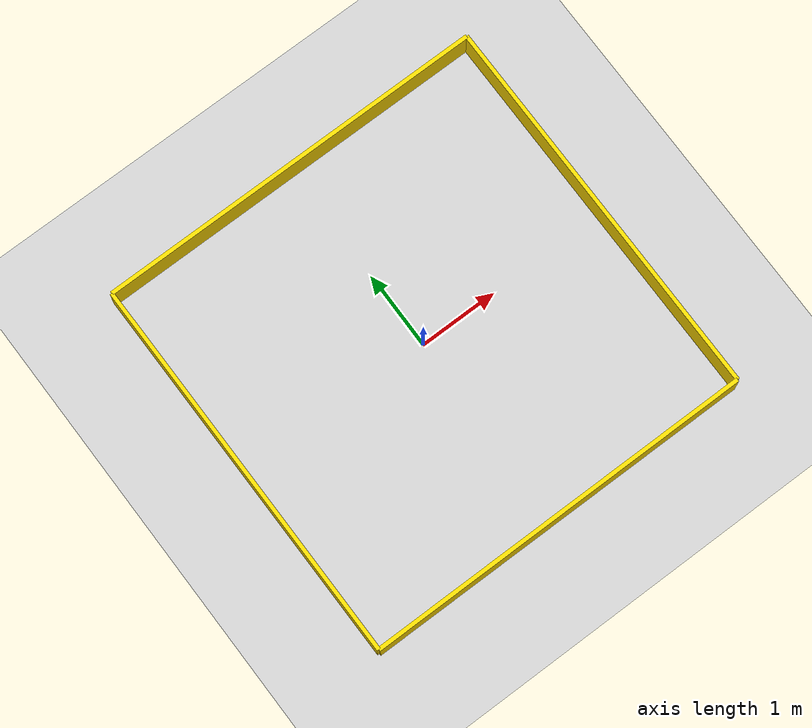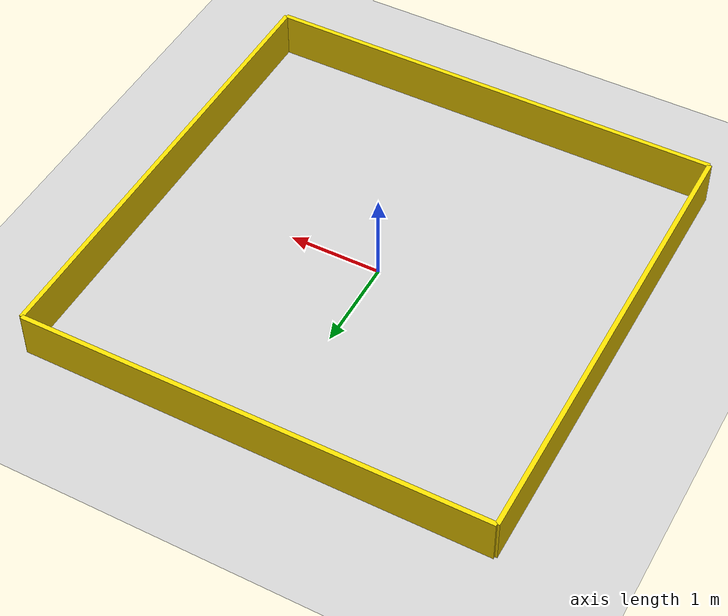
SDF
<?xml version="1.0" ?>
<sdf version="1.6">
<world name="default">
  <light name="sun" type="directional">
    <cast_shadows>1</cast_shadows>
    <pose>0 0 10 0 0 0</pose>
    <diffuse>0.8 0.8 0.8 1</diffuse>
    <direction>-0.5 0.5 -1</direction>
  </light>

  <model name="ground_plane">
    <static>1</static>
    <link name="link">
      <collision name="collision">
        <geometry><plane><normal>0 0 1</normal><size>100 100</size></plane></geometry>
      </collision>
      <visual name="visual">
        <geometry><plane><normal>0 0 1</normal><size>100 100</size></plane></geometry>
        <material><script>
          <uri>file://media/materials/scripts/gazebo.material</uri>
          <name>Gazebo/Grey</name>
        </script></material>
      </visual>
    </link>
  </model>

  <gravity>0 0 -9.8</gravity>
  <physics name="default_physics" default="0" type="ode">
    <max_step_size>0.001</max_step_size>
    <real_time_factor>1</real_time_factor>
  </physics>

  <!-- Güney duvar: Y=-2.5 -->
  <model name="wall_south">
    <static>true</static>
    <pose>0 -2.5 0.25 0 0 0</pose>
    <link name="link">
      <collision name="collision">
        <geometry><box><size>5.0 0.05 0.5</size></box></geometry>
      </collision>
      <visual name="visual">
        <geometry><box><size>5.0 0.05 0.5</size></box></geometry>
        <material><ambient>1 0.85 0 1</ambient><diffuse>1 0.85 0 1</diffuse></material>
      </visual>
    </link>
  </model>

  <!-- Kuzey duvar: Y=+2.5 -->
  <model name="wall_north">
    <static>true</static>
    <pose>0 2.5 0.25 0 0 0</pose>
    <link name="link">
      <collision name="collision">
        <geometry><box><size>5.0 0.05 0.5</size></box></geometry>
      </collision>
      <visual name="visual">
        <geometry><box><size>5.0 0.05 0.5</size></box></geometry>
        <material><ambient>1 0.85 0 1</ambient><diffuse>1 0.85 0 1</diffuse></material>
      </visual>
    </link>
  </model>

  <!-- Doğu duvar: X=+2.5 -->
  <model name="wall_east">
    <static>true</static>
    <pose>2.5 0 0.25 0 0 0</pose>
    <link name="link">
      <collision name="collision">
        <geometry><box><size>0.05 5.0 0.5</size></box></geometry>
      </collision>
      <visual name="visual">
        <geometry><box><size>0.05 5.0 0.5</size></box></geometry>
        <material><ambient>1 0.85 0 1</ambient><diffuse>1 0.85 0 1</diffuse></material>
      </visual>
    </link>
  </model>

  <!-- Batı duvar: X=-2.5 -->
  <model name="wall_west">
    <static>true</static>
    <pose>-2.5 0 0.25 0 0 0</pose>
    <link name="link">
      <collision name="collision">
        <geometry><box><size>0.05 5.0 0.5</size></box></geometry>
      </collision>
      <visual name="visual">
        <geometry><box><size>0.05 5.0 0.5</size></box></geometry>
        <material><ambient>1 0.85 0 1</ambient><diffuse>1 0.85 0 1</diffuse></material>
      </visual>
    </link>
  </model>

</world>
</sdf>
